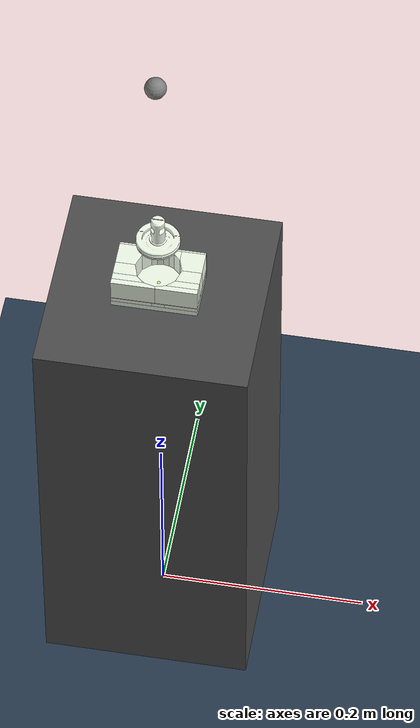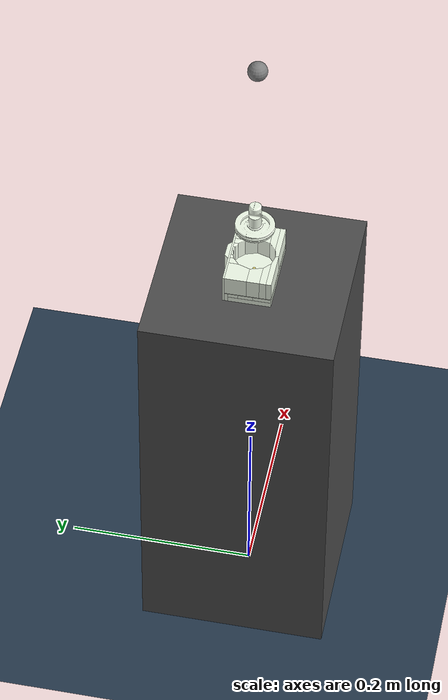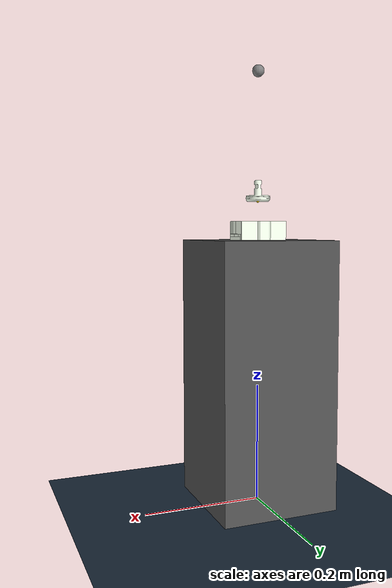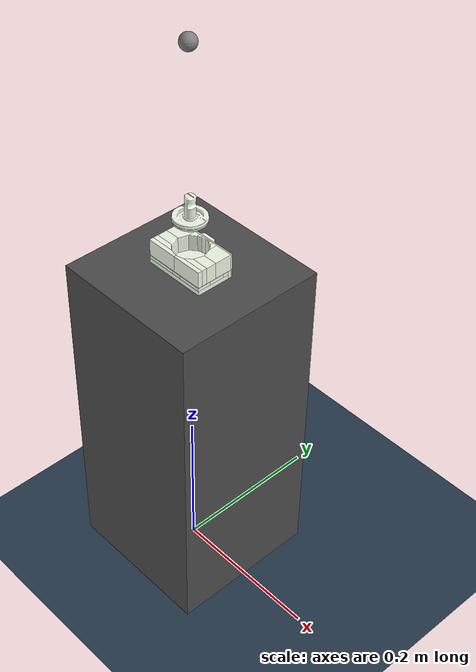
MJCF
<mujoco>

    <compiler angle="radian" inertiafromgeom="true" fitaabb="true"/>

    <option cone="elliptic">
        <flag gravity="disable" sensornoise="enable"/>
    </option>

    <asset>
        <texture name="texplane" type="2d" builtin="checker" rgb1=".2 .3 .4" rgb2=".1 0.15 0.2"
                width="512" height="512"/>
        <material name="MatGnd" reflectance="0.5" texture="texplane" texrepeat="1 1" texuniform="true"/>

        <!-- BASE -->
        <mesh name="mesh_00" file="stl/mesh/00.stl" scale="0.001 0.001 0.001"/>
        <mesh name="mesh_01" file="stl/mesh/01.stl" scale="0.001 0.001 0.001"/>
        <mesh name="mesh_02" file="stl/mesh/02.stl" scale="0.001 0.001 0.001"/>
        <mesh name="mesh_03" file="stl/mesh/03.stl" scale="0.001 0.001 0.001"/>
        <mesh name="mesh_04" file="stl/mesh/04.stl" scale="0.001 0.001 0.001"/>
        <mesh name="mesh_05" file="stl/mesh/05.stl" scale="0.001 0.001 0.001"/>
        <mesh name="mesh_06" file="stl/mesh/06.stl" scale="0.001 0.001 0.001"/>
        <mesh name="mesh_07" file="stl/mesh/07.stl" scale="0.001 0.001 0.001"/>
        <mesh name="mesh_08" file="stl/mesh/08.stl" scale="0.001 0.001 0.001"/>
        <mesh name="mesh_09" file="stl/mesh/09.stl" scale="0.001 0.001 0.001"/>
        <mesh name="mesh_10" file="stl/mesh/10.stl" scale="0.001 0.001 0.001"/>
        <mesh name="mesh_11" file="stl/mesh/11.stl" scale="0.001 0.001 0.001"/>
        <mesh name="mesh_12" file="stl/mesh/12.stl" scale="0.001 0.001 0.001"/>
        <mesh name="mesh_13" file="stl/mesh/13.stl" scale="0.001 0.001 0.001"/>
        <mesh name="mesh_14" file="stl/mesh/14.stl" scale="0.001 0.001 0.001"/>
        <mesh name="mesh_15" file="stl/mesh/15.stl" scale="0.001 0.001 0.001"/>
        <mesh name="mesh_16" file="stl/mesh/16.stl" scale="0.001 0.001 0.001"/>
        <mesh name="mesh_17" file="stl/mesh/17.stl" scale="0.001 0.001 0.001"/>
        <mesh name="mesh_18" file="stl/mesh/18.stl" scale="0.001 0.001 0.001"/>
        <mesh name="mesh_19" file="stl/mesh/19.stl" scale="0.001 0.001 0.001"/>
        <mesh name="mesh_20" file="stl/mesh/20.stl" scale="0.001 0.001 0.001"/>
        <mesh name="mesh_21" file="stl/mesh/21.stl" scale="0.001 0.001 0.001"/>
        <mesh name="mesh_22" file="stl/mesh/22.stl" scale="0.001 0.001 0.001"/>
        <mesh name="mesh_23" file="stl/mesh/23.stl" scale="0.001 0.001 0.001"/>
        <mesh name="mesh_24" file="stl/mesh/24.stl" scale="0.001 0.001 0.001"/>
        <mesh name="mesh_25" file="stl/mesh/25.stl" scale="0.001 0.001 0.001"/>
        <mesh name="mesh_26" file="stl/mesh/26.stl" scale="0.001 0.001 0.001"/>

        <!-- INSERT -->
        <mesh name="insert" file="stl/insert.stl" scale='0.00092 0.00092 0.001'/>

    </asset>

    <visual>
		<scale framewidth="0.05" framelength="0.8" jointwidth="0.05" jointlength="0.8" actuatorwidth="0.05" actuatorlength="0.8" forcewidth="0.1" contactwidth="0.1"/>
	</visual>

    <default>
        <geom condim="4"/>
        <default class="insert">
            <joint pos="0 0 0" limited="true" damping="100"/>
                <position forcelimited="true" ctrllimited="true" user="1002 40 2001 -0.005 0.005"/>
                <default class="visual">
                <geom contype="0" conaffinity="0" group="0" type="mesh" rgba=".95 .99 .92 1" mass="0"/>
            </default>

            <default class="collision">
                <geom contype="1" conaffinity="1" group="3" type="mesh" rgba=".5 .6 .7 1"/>
            </default>

            <default class="insert_finger">
                <joint damping="0" armature='5'/>
            </default>
        </default>
    </default>

    <worldbody>
        <light pos="0 0 1000" castshadow="false"/>

        <!-- FLOOR -->
        <geom name="ground" pos="0 0 0" size="5 5 10" material="MatGnd" type="plane" contype="1" conaffinity="1"/>

        <!--  TABLE  -->
        <geom name="wrk_table" pos="0 0 0.225" type="box" mass="90" size=".1 .1 .225" rgba="0.3 0.3 0.3 1" contype="1" conaffinity="1"/>

        <!--  BASE  -->
		<body name="base" pos="0 0 .45">
			<!--geom type="cylider" size="0.02 0.05" rgba=".9 0 0 .5" contype="8" conaffinity="8"/-->
            <site name="base_site" size="0.002" pos="0 0 0.0094" rgba="0.9529411765 0.8 0.03529411765 0.5"/>

            <geom pos="0 0 0" class="visual" mesh="mesh_00" condim="1" contype="1"/>
            <geom pos="0 0 0" class="visual" mesh="mesh_01" condim="1" contype="1"/>
            <geom pos="0 0 0" class="visual" mesh="mesh_02" condim="1" contype="1" mass="1"/>
            <geom pos="0 0 0" class="visual" mesh="mesh_03" condim="1" contype="1"/>
            <geom pos="0 0 0" class="visual" mesh="mesh_04" condim="1" contype="1"/>
            <geom pos="0 0 0" class="visual" mesh="mesh_05" condim="1" contype="1"/>
            <geom pos="0 0 0" class="visual" mesh="mesh_06" condim="1" contype="1"/>
            <geom pos="0 0 0" class="visual" mesh="mesh_07" condim="1" contype="1"/>
            <geom pos="0 0 0" class="visual" mesh="mesh_08" condim="1" contype="1"/>
            <geom pos="0 0 0" class="visual" mesh="mesh_09" condim="1" contype="1"/>
            <geom pos="0 0 0" class="visual" mesh="mesh_10" condim="1" contype="1"/>
            <geom pos="0 0 0" class="visual" mesh="mesh_11" condim="1" contype="1"/>
            <geom pos="0 0 0" class="visual" mesh="mesh_12" condim="1" contype="1"/>
            <geom pos="0 0 0" class="visual" mesh="mesh_13" condim="1" contype="1"/>
            <geom pos="0 0 0" class="visual" mesh="mesh_14" condim="1" contype="1"/>
            <geom pos="0 0 0" class="visual" mesh="mesh_15" condim="1" contype="1"/>
            <geom pos="0 0 0" class="visual" mesh="mesh_16" condim="1" contype="1"/>
            <geom pos="0 0 0" class="visual" mesh="mesh_17" condim="1" contype="1"/>
            <geom pos="0 0 0" class="visual" mesh="mesh_18" condim="1" contype="1"/>
            <geom pos="0 0 0" class="visual" mesh="mesh_19" condim="1" contype="1"/>
            <geom pos="0 0 0" class="visual" mesh="mesh_20" condim="1" contype="1"/>
            <geom pos="0 0 0" class="visual" mesh="mesh_21" condim="1" contype="1"/>
            <geom pos="0 0 0" class="visual" mesh="mesh_22" condim="1" contype="1"/>
            <geom pos="0 0 0" class="visual" mesh="mesh_23" condim="1" contype="1"/>
            <geom pos="0 0 0" class="visual" mesh="mesh_24" condim="1" contype="1"/>
            <geom pos="0 0 0" class="visual" mesh="mesh_25" condim="1" contype="1"/>
            <geom pos="0 0 0" class="visual" mesh="mesh_26" condim="1" contype="1"/>

 		</body>

        <!-- EE -->
        <body name="insert" pos="0 0 0.73" euler="3.14159265359 0 3.14159265359">

            <site name="ee_site" pos="0 0 0" size="0.01, 0.01, 0.01" euler="0 0 -0"/>

            <joint name="insert_x" pos="0 0 0" type="slide" axis="1 0 0" frictionloss="0" damping="100" range="-1 1"/>
            <joint name="insert_y" pos="0 0 0" type="slide" axis="0 1 0" frictionloss="0" damping="100" range="-1 1"/>
            <joint name="insert_z" pos="0 0 0" type="slide" axis="0 0 1" frictionloss="0" damping="100" range="-1 1"/>

            <joint name="insert_ball_1" pos="0 0 0" type="hinge" axis="1 0 0" frictionloss="0" damping="100" range="-3 3"/>
            <joint name="insert_ball_2" pos="0 0 0" type="hinge" axis="0 1 0" frictionloss="0" damping="100" range="-3 3"/>
            <joint name="insert_ball_3" pos="0 0 0" type="hinge" axis="0 0 1" frictionloss="0" damping="100" range="-3 3"/>

            <!-- COMPONENT -->
            <body name="piston" pos="0 0 0.18">
                <geom pos="0 0 0" euler="0 0 0" class="visual" mesh="insert" conaffinity="1" contype="1" mass="0.3"/>
                <!--geom type="cylinder" size="0.02 0.05" mass="0.1"/-->
                <site name="insert_site" size="0.002" pos="0 0 0.035" rgba="0.9529411765 0.8 0.03529411765 1"/>

            </body>

        </body>

    </worldbody>

    <actuator>

        <position name="position_x" joint="insert_x" class="insert_finger" gear="1" kp="1000" forcerange="-5 5" ctrllimited="false" ctrlrange="-0.0006 0.0006"/>
        <position name="position_y" joint="insert_y" class="insert_finger" gear="1" kp="1000" forcerange="-5 5" ctrllimited="false" ctrlrange="-0.0006 0.0006"/>
        <position name="position_z" joint="insert_z" class="insert_finger" gear="1" kp="1000" forcerange="-5 5" ctrllimited="false" ctrlrange="-0.0006 0.0006"/>

        <position name="ball_1" joint="insert_ball_1" class="insert_finger" kp="1000" forcerange="-5 5 " ctrllimited="false" ctrlrange="-0.001 0.001"/>
        <position name="ball_2" joint="insert_ball_2" class="insert_finger" kp="1000" forcerange="-5 5" ctrllimited="false" ctrlrange="-0.001 0.001"/>
        <position name="ball_3" joint="insert_ball_3" class="insert_finger" kp="1000" forcerange="-5 5" ctrllimited="false" ctrlrange="-0.001 0.001"/>

    </actuator>

    <sensor>
        <force name="ee_force" site="ee_site" noise="0"/>
        <torque name="ee_torque" site="ee_site" noise="0"/>
    </sensor>

</mujoco>
